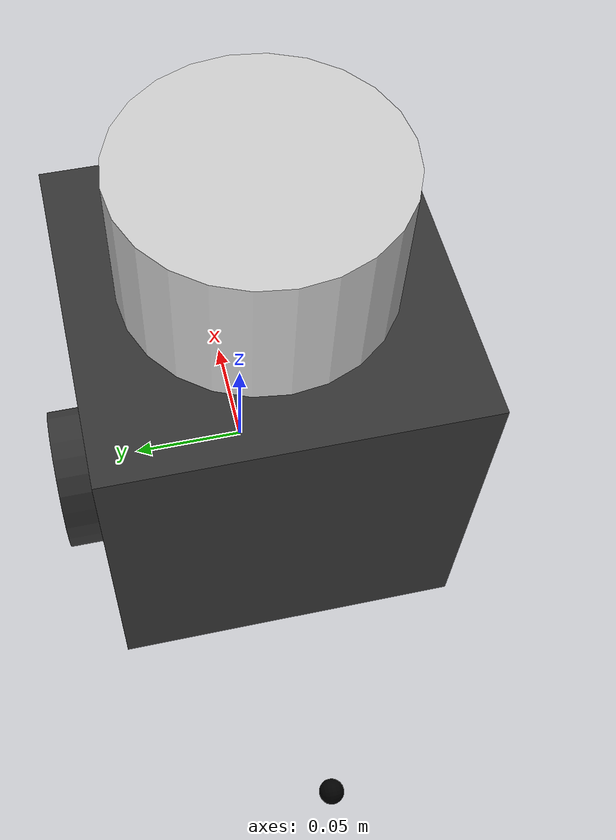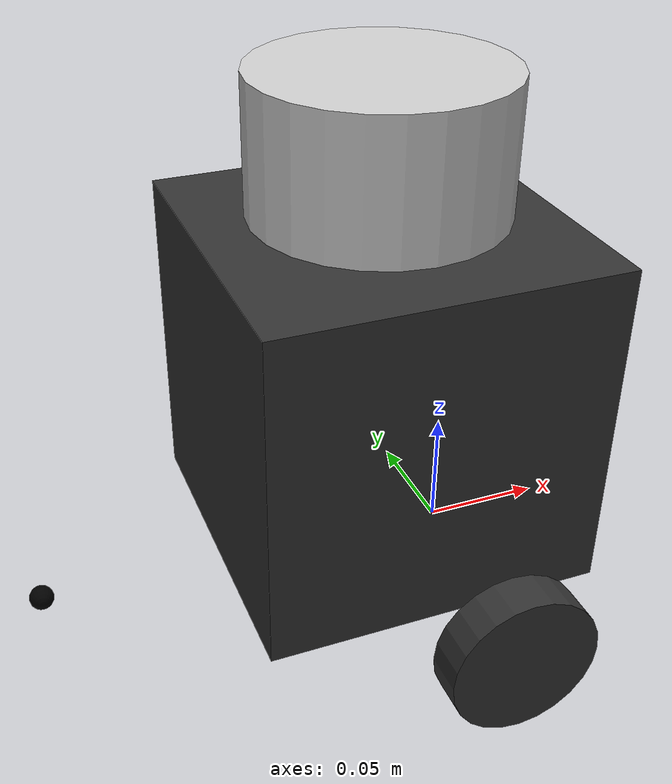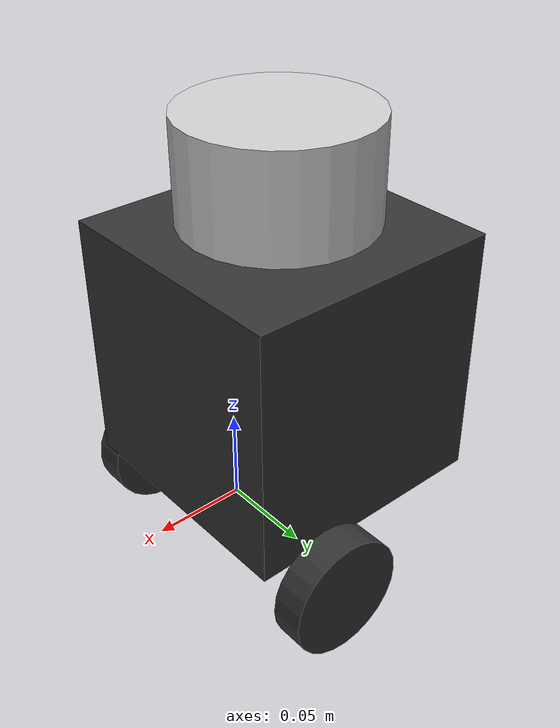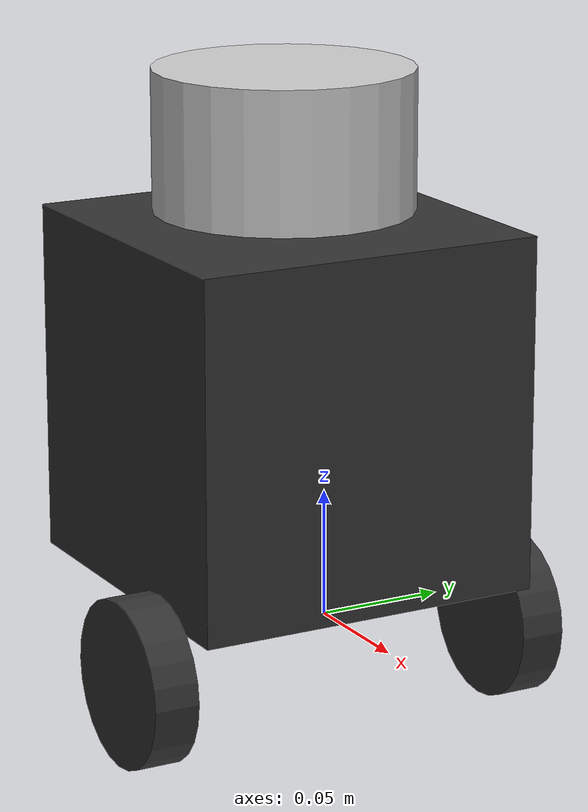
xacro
<?xml version="1.0"?>
<robot name="turtlebot3_burger" xmlns:xacro="http://www.ros.org/wiki/xacro">

  <material name="black">
    <color rgba="0.0 0.0 0.0 1.0"/>
  </material>
  <material name="dark_grey">
    <color rgba="0.2 0.2 0.2 1.0"/>
  </material>
  <material name="light_grey">
    <color rgba="0.8 0.8 0.8 1.0"/>
  </material>
  <material name="orange">
    <color rgba="1.0 0.4 0.0 1.0"/>
  </material>

  <xacro:property name="wheel_radius"     value="0.033"/>   <!-- metres -->
  <xacro:property name="wheel_width"      value="0.018"/>   <!-- metres -->
  <xacro:property name="wheel_separation" value="0.160"/>   <!-- centre-to-centre, metres -->
  <xacro:property name="base_height"      value="0.010"/>   <!-- floor to base_link z, metres -->

  <link name="base_footprint"/>

  <joint name="base_joint" type="fixed">
    <parent link="base_footprint"/>
    <child  link="base_link"/>
    <origin xyz="0.0 0.0 ${base_height}" rpy="0 0 0"/>
  </joint>

  <link name="base_link">
    <visual>
      <origin xyz="-0.032 0.0 0.070" rpy="0 0 0"/>
      <geometry>
        <!-- Approximate box representation of the Burger chassis -->
        <box size="0.140 0.140 0.140"/>
      </geometry>
      <material name="dark_grey"/>
    </visual>
    <collision>
      <origin xyz="-0.032 0.0 0.070" rpy="0 0 0"/>
      <geometry>
        <box size="0.140 0.140 0.140"/>
      </geometry>
    </collision>
    <!-- inertial block required for Gazebo — mass/inertia of Burger chassis -->
    <inertial>
      <origin xyz="0.0 0.0 0.0" rpy="0 0 0"/>
      <mass value="0.829"/>
      <inertia ixx="0.00218"  ixy="0.0"  ixz="-0.000428"
               iyy="0.00218"  iyz="0.0"
               izz="0.00218"/>
    </inertial>
  </link>

  <joint name="wheel_left_joint" type="continuous">
    <parent link="base_link"/>
    <child  link="wheel_left_link"/>
    <origin xyz="0.0 ${wheel_separation / 2.0} -0.023" rpy="-1.5707963 0 0"/>
    <axis xyz="0 0 1"/>
  </joint>

  <link name="wheel_left_link">
    <visual>
      <origin xyz="0 0 0" rpy="0 0 0"/>
      <geometry>
        <cylinder radius="${wheel_radius}" length="${wheel_width}"/>
      </geometry>
      <material name="dark_grey"/>
    </visual>
    <collision>
      <origin xyz="0 0 0" rpy="0 0 0"/>
      <geometry>
        <cylinder radius="${wheel_radius}" length="${wheel_width}"/>
      </geometry>
    </collision>
    <inertial>
      <origin xyz="0 0 0" rpy="0 0 0"/>
      <mass value="0.029"/>
      <inertia ixx="1.117e-5" ixy="0.0" ixz="0.0"
               iyy="1.117e-5" iyz="0.0"
               izz="1.576e-5"/>
    </inertial>
  </link>

  <!-- ================================================================
       WHEEL: RIGHT
  ================================================================ -->
  <joint name="wheel_right_joint" type="continuous">
    <parent link="base_link"/>
    <child  link="wheel_right_link"/>
    <origin xyz="0.0 -${wheel_separation / 2.0} -0.023" rpy="-1.5707963 0 0"/>
    <axis xyz="0 0 1"/>
  </joint>

  <link name="wheel_right_link">
    <visual>
      <origin xyz="0 0 0" rpy="0 0 0"/>
      <geometry>
        <cylinder radius="${wheel_radius}" length="${wheel_width}"/>
      </geometry>
      <material name="dark_grey"/>
    </visual>
    <collision>
      <origin xyz="0 0 0" rpy="0 0 0"/>
      <geometry>
        <cylinder radius="${wheel_radius}" length="${wheel_width}"/>
      </geometry>
    </collision>
    <inertial>
      <origin xyz="0 0 0" rpy="0 0 0"/>
      <mass value="0.029"/>
      <inertia ixx="1.117e-5" ixy="0.0" ixz="0.0"
               iyy="1.117e-5" iyz="0.0"
               izz="1.576e-5"/>
    </inertial>
  </link>

  <joint name="caster_back_joint" type="fixed">
    <parent link="base_link"/>
    <child  link="caster_back_link"/>
    <origin xyz="-0.177 0.0 -0.0035" rpy="-1.5707963 0 0"/>
  </joint>

  <link name="caster_back_link">
    <visual>
      <origin xyz="0 0 0" rpy="0 0 0"/>
      <geometry>
        <sphere radius="0.005"/>
      </geometry>
      <material name="black"/>
    </visual>
    <collision>
      <origin xyz="0 0 0" rpy="0 0 0"/>
      <geometry>
        <sphere radius="0.005"/>
      </geometry>
    </collision>
    <inertial>
      <origin xyz="0 0 0" rpy="0 0 0"/>
      <mass value="0.005"/>
      <inertia ixx="2e-6" ixy="0.0" ixz="0.0"
               iyy="2e-6" iyz="0.0"
               izz="2e-6"/>
    </inertial>
  </link>

  <joint name="imu_joint" type="fixed">
    <parent link="base_link"/>
    <child  link="imu_link"/>
    <origin xyz="-0.032 0.0 0.068" rpy="0 0 0"/>
  </joint>

  <link name="imu_link">
    <visual>
      <origin xyz="0 0 0" rpy="0 0 0"/>
      <geometry>
        <box size="0.01 0.01 0.01"/>
      </geometry>
      <material name="orange"/>
    </visual>
  </link>

  <joint name="scan_joint" type="fixed">
    <parent link="base_link"/>
    <child  link="base_scan"/>
    <origin xyz="-0.032 0.0 0.172" rpy="0 0 3.14159"/>
  </joint>

  <link name="base_scan">
    <visual>
      <origin xyz="0 0 0.0" rpy="0 0 0"/>
      <geometry>
        <cylinder radius="0.0508" length="0.055"/>
      </geometry>
      <material name="light_grey"/>
    </visual>
    <collision>
      <origin xyz="0 0 0.0" rpy="0 0 0"/>
      <geometry>
        <cylinder radius="0.0508" length="0.055"/>
      </geometry>
    </collision>
    <inertial>
      <origin xyz="0 0 0" rpy="0 0 0"/>
      <mass value="0.114"/>
      <inertia ixx="0.0001" ixy="0.0" ixz="0.0"
               iyy="0.0001" iyz="0.0"
               izz="0.0001"/>
    </inertial>
  </link>

</robot>
